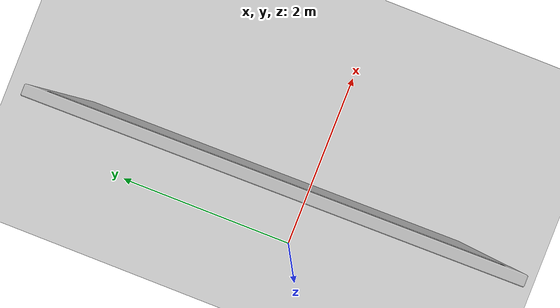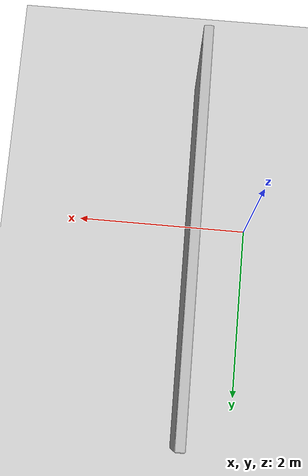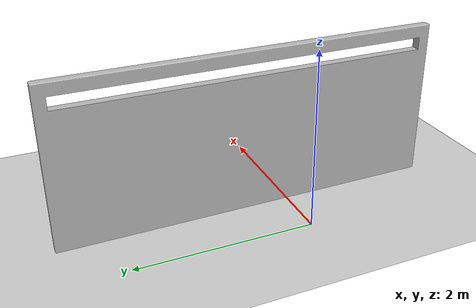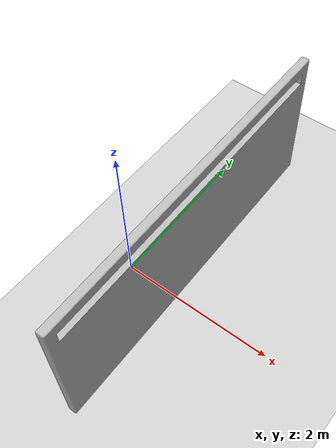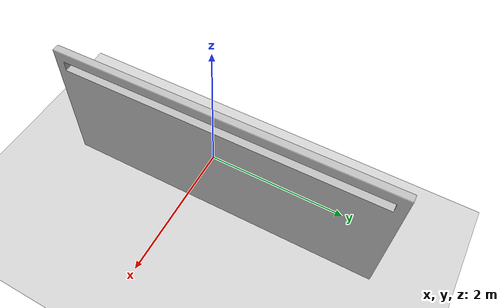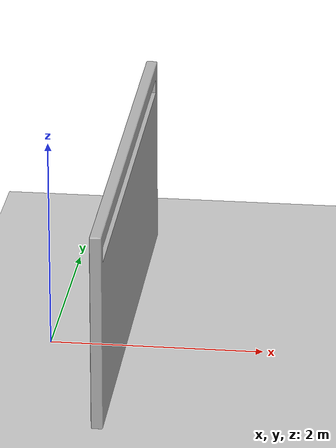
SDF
<sdf version="1.7">
 <world name="default">
  <light name="sun" type="directional">
   <pose>0 0 -10 0 -0 0</pose>
   <diffuse>0.8 0.8 0.8 1</diffuse>
   <specular>0.2 0.2 0.2 1</specular>
   <attenuation>
    <range>1000</range>
    <constant>0.9</constant>
    <linear>0.01</linear>
    <quadratic>0.001</quadratic>
   </attenuation>
   <direction>0 0.5 -0.9</direction>
   <spot><inner_angle>0</inner_angle><outer_angle>0</outer_angle><falloff>0</falloff></spot>
  </light>
  <light name="point_light" type="point">
   <pose>0 -0.377195 6.59868 0 -0 0</pose>
   <diffuse>0.784314 0.784314 0.784314 1</diffuse>
   <specular>0.0980392 0.0980392 0.0980392 1</specular>
   <attenuation>
    <range>50</range>
    <constant>0.8</constant>
    <linear>0</linear>
    <quadratic>0.001</quadratic>
   </attenuation>
   <cast_shadows>0</cast_shadows>
   <direction>0 0 -1</direction>
   <spot><inner_angle>0</inner_angle><outer_angle>0</outer_angle><falloff>0</falloff></spot>
  </light>
  <model name="ground_plane">
   <static>1</static>
   <link name="link">
    <collision name="collision">
     <geometry><plane><normal>0 0 1</normal><size>100 100</size></plane></geometry>
     <surface><friction><ode><mu>100</mu><mu2>50</mu2></ode></friction></surface>
    </collision>
    <visual name="visual">
     <cast_shadows>0</cast_shadows>
     <geometry><plane><normal>0 0 1</normal><size>100 100</size></plane></geometry>
     <material>
      <script><uri>file://media/materials/scripts/gazebo.material</uri><name>Gazebo/Grey</name></script>
     </material>
    </visual>
   </link>
  </model>
  <gravity>0 0 -9.8</gravity>
  <magnetic_field>6e-06 2.3e-05 -4.2e-05</magnetic_field>
  <atmosphere type="adiabatic"/>
  <physics type="ode">
   <max_step_size>0.001</max_step_size>
   <real_time_factor>1</real_time_factor>
   <real_time_update_rate>1000</real_time_update_rate>
  </physics>
  <scene><ambient>0.4 0.4 0.4 1</ambient><background>0.7 0.7 0.7 1</background><shadows>1</shadows></scene>
  <audio><device>default</device></audio>
  <spherical_coordinates>
   <surface_model>EARTH_WGS84</surface_model>
   <latitude_deg>0</latitude_deg>
   <longitude_deg>0</longitude_deg>
   <elevation>0</elevation>
   <heading_deg>0</heading_deg>
  </spherical_coordinates>
  <model name="aws_robomaker_residential_RoomWall_01">
   <link name="link">
    <inertial><mass>100</mass></inertial>
    <collision name="collision">
     <geometry>
      <mesh>
       <uri>model://aws_robomaker_residential_RoomWall_01/meshes/aws_RoomWall_01_collision.DAE</uri>
       <scale>1 1 1</scale>
      </mesh>
     </geometry>
    </collision>
    <visual name="visual">
     <geometry>
      <mesh><uri>model://aws_robomaker_residential_RoomWall_01/meshes/aws_RoomWall_01_visual.DAE</uri></mesh>
     </geometry>
     <meta><layer>2</layer></meta>
    </visual>
   </link>
   <static>1</static>
   <pose>0.656978 0.428671 0 0 -0 1.57927</pose>
  </model>
 </world>
</sdf>
